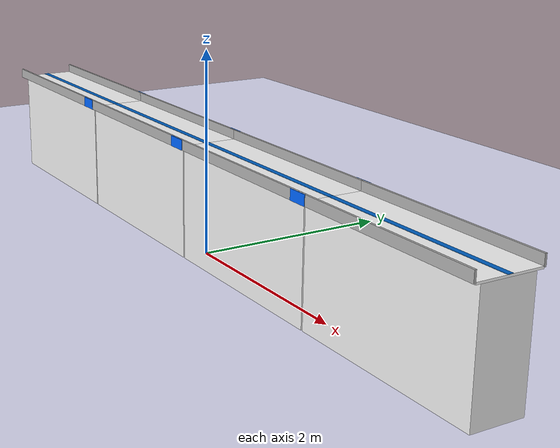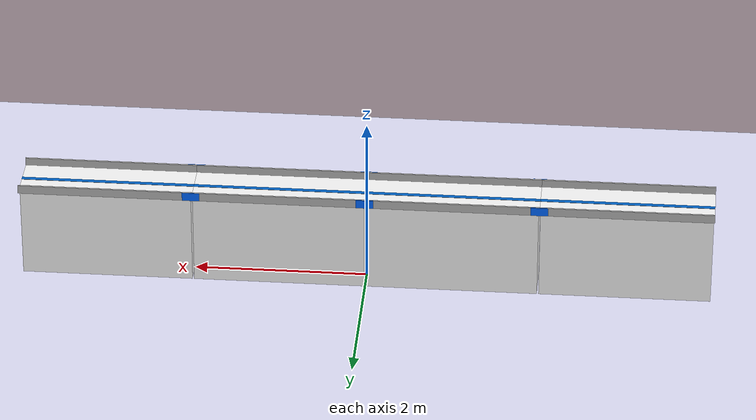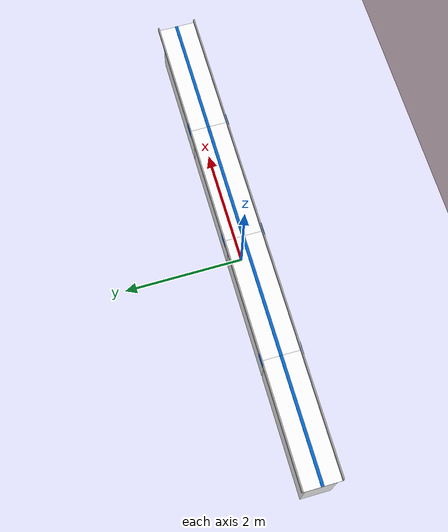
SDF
<sdf version="1.8">
 <world name="ai_waiver_restaurant">
  <physics name="1ms" type="ignored">
   <max_step_size>0.001</max_step_size>
   <real_time_factor>1.0</real_time_factor>
  </physics>
  <plugin filename="ignition-gazebo-physics-system" name="ignition::gazebo::systems::Physics"/>
  <plugin filename="ignition-gazebo-scene-broadcaster-system" name="ignition::gazebo::systems::SceneBroadcaster"/>
  <plugin filename="ignition-gazebo-user-commands-system" name="ignition::gazebo::systems::UserCommands"/>
  <plugin filename="ignition-gazebo-sensors-system" name="ignition::gazebo::systems::Sensors">
   <render_engine>ogre2</render_engine>
  </plugin>
  <light type="directional" name="sun">
   <pose>0 0 10 0 0 0</pose>
   <diffuse>1.0 1.0 1.0 1</diffuse>
   <specular>0.5 0.5 0.5 1</specular>
   <direction>-0.5 0.1 -0.9</direction>
  </light>
  <model name="ground_plane">
   <static>true</static>
   <link name="link">
    <collision name="collision">
     <geometry><plane><normal>0 0 1</normal><size>100 100</size></plane></geometry>
    </collision>
    <visual name="visual">
     <geometry><plane><normal>0 0 1</normal><size>100 100</size></plane></geometry>
     <material>
      <ambient>0.9 0.9 1 1</ambient>
      <diffuse>0.9 0.9 1 1</diffuse>
      <specular>0.5 0.5 0.5 1</specular>
     </material>
    </visual>
   </link>
  </model>
  <include>
   <static>true</static>
   <uri>model://delivery_track</uri>
   <name>track_seg_1</name>
   <pose>-3 0 1.1 0 0 0</pose>
  </include>
  <include>
   <static>true</static>
   <uri>model://delivery_track</uri>
   <name>track_seg_2</name>
   <pose>-1 0 1.1 0 0 0</pose>
  </include>
  <include>
   <static>true</static>
   <uri>model://delivery_track</uri>
   <name>track_seg_3</name>
   <pose>1 0 1.1 0 0 0</pose>
  </include>
  <include>
   <static>true</static>
   <uri>model://delivery_track</uri>
   <name>track_seg_4</name>
   <pose>3 0 1.1 0 0 0</pose>
  </include>
  <model name="label_A1">
   <static>true</static>
   <pose>-2 0.32 1.15 0 0 0</pose>
   <link name="l">
    <visual name="v">
     <geometry><box><size>0.2 0.01 0.1</size></box></geometry>
     <material><ambient>0 0.4 1 1</ambient><diffuse>0 0.4 1 1</diffuse></material>
    </visual>
   </link>
  </model>
  <model name="label_A2">
   <static>true</static>
   <pose>0 0.32 1.15 0 0 0</pose>
   <link name="l">
    <visual name="v">
     <geometry><box><size>0.2 0.01 0.1</size></box></geometry>
     <material><ambient>0 0.4 1 1</ambient><diffuse>0 0.4 1 1</diffuse></material>
    </visual>
   </link>
  </model>
  <model name="label_A3">
   <static>true</static>
   <pose>2 0.32 1.15 0 0 0</pose>
   <link name="l">
    <visual name="v">
     <geometry><box><size>0.2 0.01 0.1</size></box></geometry>
     <material><ambient>0 0.4 1 1</ambient><diffuse>0 0.4 1 1</diffuse></material>
    </visual>
   </link>
  </model>
  <model name="label_B1">
   <static>true</static>
   <pose>-2 -0.32 1.15 0 0 0</pose>
   <link name="l">
    <visual name="v">
     <geometry><box><size>0.2 0.01 0.1</size></box></geometry>
     <material><ambient>0 0.4 1 1</ambient><diffuse>0 0.4 1 1</diffuse></material>
    </visual>
   </link>
  </model>
  <model name="label_B2">
   <static>true</static>
   <pose>0 -0.32 1.15 0 0 0</pose>
   <link name="l">
    <visual name="v">
     <geometry><box><size>0.2 0.01 0.1</size></box></geometry>
     <material><ambient>0 0.4 1 1</ambient><diffuse>0 0.4 1 1</diffuse></material>
    </visual>
   </link>
  </model>
  <model name="label_B3">
   <static>true</static>
   <pose>2 -0.32 1.15 0 0 0</pose>
   <link name="l">
    <visual name="v">
     <geometry><box><size>0.2 0.01 0.1</size></box></geometry>
     <material><ambient>0 0.4 1 1</ambient><diffuse>0 0.4 1 1</diffuse></material>
    </visual>
   </link>
  </model>
 </world>
</sdf>

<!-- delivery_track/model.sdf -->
<sdf version="1.8">
  <model name="delivery_track">
    <static>true</static>
    <link name="link">
      <!-- Main Track Countertop (Pure White) -->
      <visual name="floor">
        <geometry><box><size>2.0 0.6 0.02</size></box></geometry>
        <material>
          <ambient>1 1 1 1</ambient>
          <diffuse>1 1 1 1</diffuse>
          <specular>0.8 0.8 0.8 1</specular>
        </material>
      </visual>
      <collision name="floor_c">
        <geometry><box><size>2.0 0.6 0.02</size></box></geometry>
      </collision>

      <!-- SOLID WHITE PEDESTAL (To ground) - Visual only to avoid ODE crashes -->
      <visual name="pedestal">
        <pose>0 0 -0.55 0 0 0</pose>
        <geometry><box><size>1.98 0.5 1.1</size></box></geometry>
        <material>
          <ambient>0.95 0.95 0.95 1</ambient>
          <diffuse>0.95 0.95 0.95 1</diffuse>
        </material>
      </visual>

      <!-- Right Silver Rail (Low Height) -->
      <visual name="rail_right">
        <pose>0 -0.31 0.05 0 0 0</pose>
        <geometry><box><size>2.0 0.02 0.1</size></box></geometry>
        <material>
          <ambient>0.7 0.7 0.7 1</ambient>
          <diffuse>0.7 0.7 0.7 1</diffuse>
          <specular>1 1 1 1</specular>
        </material>
      </visual>

      <!-- Left Silver Rail (Low Height) -->
      <visual name="rail_left">
        <pose>0 0.31 0.05 0 0 0</pose>
        <geometry><box><size>2.0 0.02 0.1</size></box></geometry>
        <material>
          <ambient>0.7 0.7 0.7 1</ambient>
          <diffuse>0.7 0.7 0.7 1</diffuse>
          <specular>1 1 1 1</specular>
        </material>
      </visual>

      <!-- Blue Tech Accent Strip -->
      <visual name="accent">
        <pose>0 0 0.011 0 0 0</pose>
        <geometry><box><size>2.0 0.05 0.005</size></box></geometry>
        <material>
          <ambient>0 0.4 0.8 1</ambient>
          <diffuse>0 0.4 0.8 1</diffuse>
          <emissive>0 0.2 0.4 1</emissive>
        </material>
      </visual>
    </link>
  </model>
</sdf>
